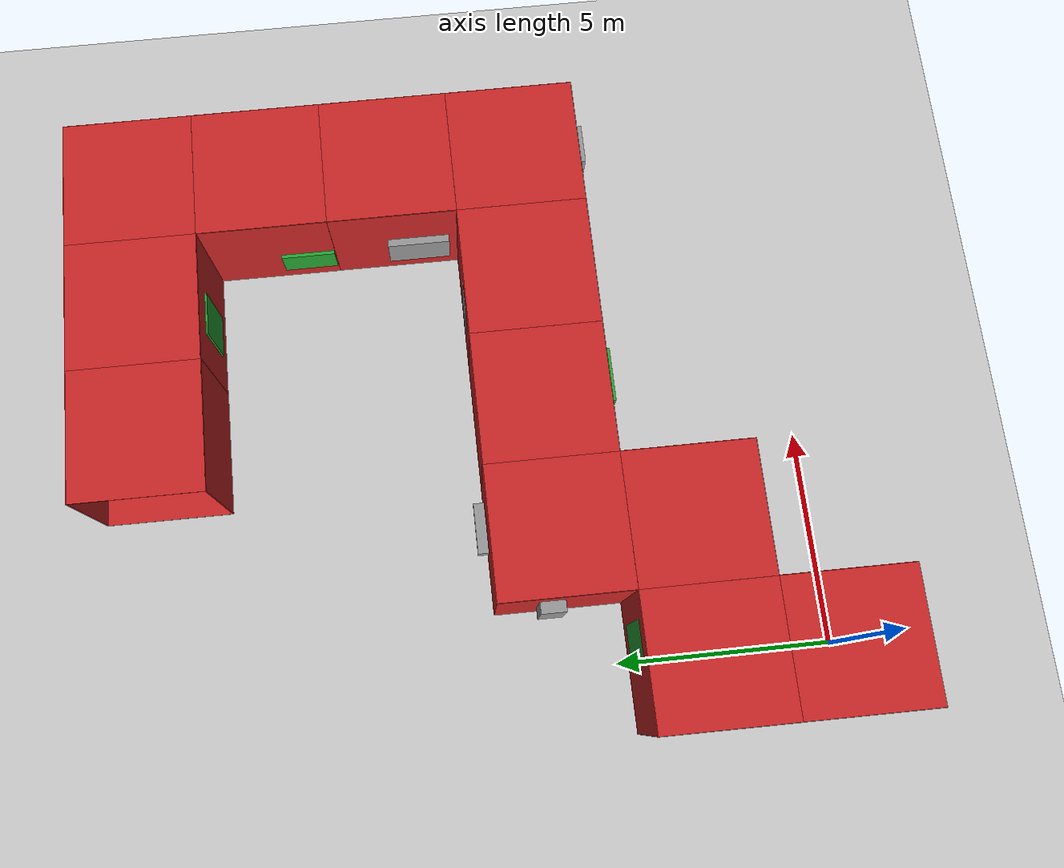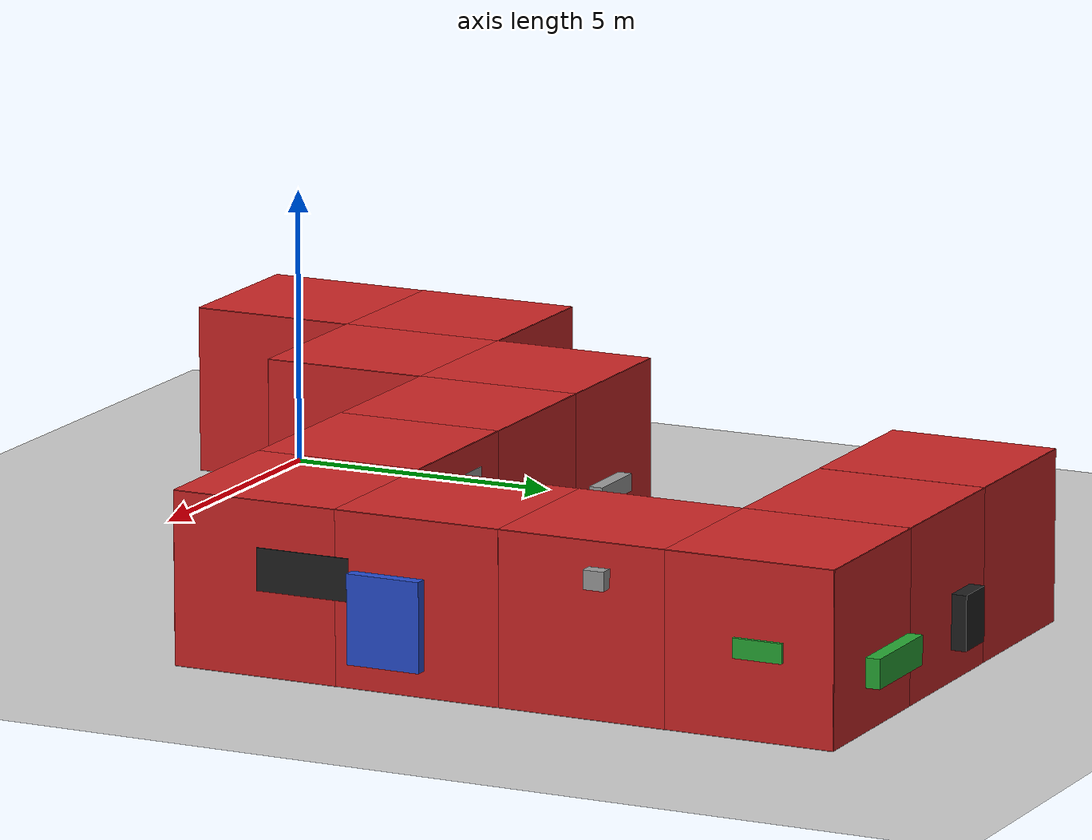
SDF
<sdf version="1.6">
 <world name="default">
  <model name="ground_plane">
   <static>1</static>
   <link name="link">
    <collision name="collision">
     <geometry><plane><normal>0 0 1</normal><size>100 100</size></plane></geometry>
     <surface><friction><ode><mu>100</mu><mu2>50</mu2></ode></friction></surface>
    </collision>
    <visual name="visual">
     <cast_shadows>0</cast_shadows>
     <geometry><plane><normal>0 0 1</normal><size>100 100</size></plane></geometry>
     <material>
      <script><uri>file://media/materials/scripts/gazebo.material</uri><name>Gazebo/Grey</name></script>
     </material>
    </visual>
   </link>
  </model>
  <model name="corridor_red">
   <model name="wall_right_0_0_0_0">
    <static>1</static>
    <pose>1.5 0 1.5 0 -0 1.57</pose>
    <link name="link">
     <collision name="collision"><geometry><box><size>3 0.02 3</size></box></geometry></collision>
     <visual name="visual">
      <material>
       <script><name>Gazebo/Red</name><uri>file://media/materials/scripts/gazebo.material</uri></script>
      </material>
      <geometry><box><size>3 0.02 3</size></box></geometry>
     </visual>
    </link>
   </model>
   <model name="wall_left_0_0_0_0">
    <static>1</static>
    <pose>-1.5 0 1.5 0 -0 1.57</pose>
    <link name="link">
     <collision name="collision"><geometry><box><size>3 0.02 3</size></box></geometry></collision>
     <visual name="visual">
      <material>
       <script><name>Gazebo/Red</name><uri>file://media/materials/scripts/gazebo.material</uri></script>
      </material>
      <geometry><box><size>3 0.02 3</size></box></geometry>
     </visual>
    </link>
   </model>
   <model name="wall_top_0_0_0_0">
    <static>1</static>
    <pose>0 0 3 1.57 -0 0</pose>
    <link name="link">
     <collision name="collision"><geometry><box><size>3 0.02 3</size></box></geometry></collision>
     <visual name="visual">
      <material>
       <script><name>Gazebo/Red</name><uri>file://media/materials/scripts/gazebo.material</uri></script>
      </material>
      <geometry><box><size>3 0.02 3</size></box></geometry>
     </visual>
    </link>
   </model>
   <model name="wall_bottom_0_0_0_0">
    <static>1</static>
    <pose>0 0 0 1.57 -0 0</pose>
    <link name="link">
     <collision name="collision"><geometry><box><size>3 0.02 3</size></box></geometry></collision>
     <visual name="visual">
      <material>
       <script><name>Gazebo/Red</name><uri>file://media/materials/scripts/gazebo.material</uri></script>
      </material>
      <geometry><box><size>3 0.02 3</size></box></geometry>
     </visual>
    </link>
   </model>
   <model name="wall_front_0_1_0_2">
    <static>1</static>
    <pose>0 4.5 1.5 0 -0 0</pose>
    <link name="link">
     <collision name="collision"><geometry><box><size>3 0.02 3</size></box></geometry></collision>
     <visual name="visual">
      <material>
       <script><name>Gazebo/Red</name><uri>file://media/materials/scripts/gazebo.material</uri></script>
      </material>
      <geometry><box><size>3 0.02 3</size></box></geometry>
     </visual>
    </link>
   </model>
   <model name="wall_left_0_1_0_2">
    <static>1</static>
    <pose>-1.5 3 1.5 0 -0 1.57</pose>
    <link name="link">
     <collision name="collision"><geometry><box><size>3 0.02 3</size></box></geometry></collision>
     <visual name="visual">
      <material>
       <script><name>Gazebo/Red</name><uri>file://media/materials/scripts/gazebo.material</uri></script>
      </material>
      <geometry><box><size>3 0.02 3</size></box></geometry>
     </visual>
    </link>
   </model>
   <model name="wall_top_0_1_0_2">
    <static>1</static>
    <pose>0 3 3 1.57 -0 0</pose>
    <link name="link">
     <collision name="collision"><geometry><box><size>3 0.02 3</size></box></geometry></collision>
     <visual name="visual">
      <material>
       <script><name>Gazebo/Red</name><uri>file://media/materials/scripts/gazebo.material</uri></script>
      </material>
      <geometry><box><size>3 0.02 3</size></box></geometry>
     </visual>
    </link>
   </model>
   <model name="wall_bottom_0_1_0_2">
    <static>1</static>
    <pose>0 3 0 1.57 -0 0</pose>
    <link name="link">
     <collision name="collision"><geometry><box><size>3 0.02 3</size></box></geometry></collision>
     <visual name="visual">
      <material>
       <script><name>Gazebo/Red</name><uri>file://media/materials/scripts/gazebo.material</uri></script>
      </material>
      <geometry><box><size>3 0.02 3</size></box></geometry>
     </visual>
    </link>
   </model>
   <model name="panel_0_1_0_2">
    <static>1</static>
    <pose>0.487638 4.5 1.52326 0 -0 1.57</pose>
    <link name="link">
     <collision name="collision"><geometry><box><size>0.058495 0.864081 1.93927</size></box></geometry></collision>
     <visual name="visual">
      <material>
       <script><name>Gazebo/Green</name><uri>file://media/materials/scripts/gazebo.material</uri></script>
      </material>
      <geometry><box><size>0.058495 0.864081 1.93927</size></box></geometry>
     </visual>
    </link>
   </model>
   <model name="panel_0_1_1_2">
    <static>1</static>
    <pose>-1.5 2.52412 1.63613 0 -0 0</pose>
    <link name="link">
     <collision name="collision">
      <geometry><box><size>0.045875 0.808978 0.846938</size></box></geometry>
     </collision>
     <visual name="visual">
      <material>
       <script><name>Gazebo/Black</name><uri>file://media/materials/scripts/gazebo.material</uri></script>
      </material>
      <geometry><box><size>0.045875 0.808978 0.846938</size></box></geometry>
     </visual>
    </link>
   </model>
   <model name="wall_front_1_1_0_3">
    <static>1</static>
    <pose>4.5 3 1.5 0 0 -1.57</pose>
    <link name="link">
     <collision name="collision"><geometry><box><size>3 0.02 3</size></box></geometry></collision>
     <visual name="visual">
      <material>
       <script><name>Gazebo/Red</name><uri>file://media/materials/scripts/gazebo.material</uri></script>
      </material>
      <geometry><box><size>3 0.02 3</size></box></geometry>
     </visual>
    </link>
   </model>
   <model name="wall_right_1_1_0_3">
    <static>1</static>
    <pose>3 1.5 1.5 0 -0 0</pose>
    <link name="link">
     <collision name="collision"><geometry><box><size>3 0.02 3</size></box></geometry></collision>
     <visual name="visual">
      <material>
       <script><name>Gazebo/Red</name><uri>file://media/materials/scripts/gazebo.material</uri></script>
      </material>
      <geometry><box><size>3 0.02 3</size></box></geometry>
     </visual>
    </link>
   </model>
   <model name="wall_top_1_1_0_3">
    <static>1</static>
    <pose>3 3 3 1.57 0 -1.57</pose>
    <link name="link">
     <collision name="collision"><geometry><box><size>3 0.02 3</size></box></geometry></collision>
     <visual name="visual">
      <material>
       <script><name>Gazebo/Red</name><uri>file://media/materials/scripts/gazebo.material</uri></script>
      </material>
      <geometry><box><size>3 0.02 3</size></box></geometry>
     </visual>
    </link>
   </model>
   <model name="wall_bottom_1_1_0_3">
    <static>1</static>
    <pose>3 3 0 1.57 0 -1.57</pose>
    <link name="link">
     <collision name="collision"><geometry><box><size>3 0.02 3</size></box></geometry></collision>
     <visual name="visual">
      <material>
       <script><name>Gazebo/Red</name><uri>file://media/materials/scripts/gazebo.material</uri></script>
      </material>
      <geometry><box><size>3 0.02 3</size></box></geometry>
     </visual>
    </link>
   </model>
   <model name="panel_1_1_0_3">
    <static>1</static>
    <pose>4.5 3.93743 1.50054 0 -0 0</pose>
    <link name="link">
     <collision name="collision"><geometry><box><size>0.007959 1.45146 1.98542</size></box></geometry></collision>
     <visual name="visual">
      <material>
       <script><name>Gazebo/White</name><uri>file://media/materials/scripts/gazebo.material</uri></script>
      </material>
      <geometry><box><size>0.007959 1.45146 1.98542</size></box></geometry>
     </visual>
    </link>
   </model>
   <model name="panel_1_1_1_3">
    <static>1</static>
    <pose>3.24702 1.5 1.29993 0 0 -1.57</pose>
    <link name="link">
     <collision name="collision">
      <geometry><box><size>0.208442 0.891773 0.952969</size></box></geometry>
     </collision>
     <visual name="visual">
      <material>
       <script><name>Gazebo/White</name><uri>file://media/materials/scripts/gazebo.material</uri></script>
      </material>
      <geometry><box><size>0.208442 0.891773 0.952969</size></box></geometry>
     </visual>
    </link>
   </model>
   <model name="wall_front_1_2_0_2">
    <static>1</static>
    <pose>3 7.5 1.5 0 -0 0</pose>
    <link name="link">
     <collision name="collision"><geometry><box><size>3 0.02 3</size></box></geometry></collision>
     <visual name="visual">
      <material>
       <script><name>Gazebo/Red</name><uri>file://media/materials/scripts/gazebo.material</uri></script>
      </material>
      <geometry><box><size>3 0.02 3</size></box></geometry>
     </visual>
    </link>
   </model>
   <model name="wall_left_1_2_0_2">
    <static>1</static>
    <pose>1.5 6 1.5 0 -0 1.57</pose>
    <link name="link">
     <collision name="collision"><geometry><box><size>3 0.02 3</size></box></geometry></collision>
     <visual name="visual">
      <material>
       <script><name>Gazebo/Red</name><uri>file://media/materials/scripts/gazebo.material</uri></script>
      </material>
      <geometry><box><size>3 0.02 3</size></box></geometry>
     </visual>
    </link>
   </model>
   <model name="wall_top_1_2_0_2">
    <static>1</static>
    <pose>3 6 3 1.57 -0 0</pose>
    <link name="link">
     <collision name="collision"><geometry><box><size>3 0.02 3</size></box></geometry></collision>
     <visual name="visual">
      <material>
       <script><name>Gazebo/Red</name><uri>file://media/materials/scripts/gazebo.material</uri></script>
      </material>
      <geometry><box><size>3 0.02 3</size></box></geometry>
     </visual>
    </link>
   </model>
   <model name="wall_bottom_1_2_0_2">
    <static>1</static>
    <pose>3 6 0 1.57 -0 0</pose>
    <link name="link">
     <collision name="collision"><geometry><box><size>3 0.02 3</size></box></geometry></collision>
     <visual name="visual">
      <material>
       <script><name>Gazebo/Red</name><uri>file://media/materials/scripts/gazebo.material</uri></script>
      </material>
      <geometry><box><size>3 0.02 3</size></box></geometry>
     </visual>
    </link>
   </model>
   <model name="panel_1_2_0_2">
    <static>1</static>
    <pose>3.38466 7.5 1.07951 0 -0 1.57</pose>
    <link name="link">
     <collision name="collision"><geometry><box><size>0.518997 1.1635 0.317813</size></box></geometry></collision>
     <visual name="visual">
      <material>
       <script><name>Gazebo/Grey</name><uri>file://media/materials/scripts/gazebo.material</uri></script>
      </material>
      <geometry><box><size>0.518997 1.1635 0.317813</size></box></geometry>
     </visual>
    </link>
   </model>
   <model name="panel_1_2_1_2">
    <static>1</static>
    <pose>1.5 6.27988 1.72428 0 -0 0</pose>
    <link name="link">
     <collision name="collision"><geometry><box><size>0.54761 0.568058 1.47225</size></box></geometry></collision>
     <visual name="visual">
      <material>
       <script><name>Gazebo/Grey</name><uri>file://media/materials/scripts/gazebo.material</uri></script>
      </material>
      <geometry><box><size>0.54761 0.568058 1.47225</size></box></geometry>
     </visual>
    </link>
   </model>
   <model name="wall_right_2_2_0_1">
    <static>1</static>
    <pose>6 4.5 1.5 0 -0 0</pose>
    <link name="link">
     <collision name="collision"><geometry><box><size>3 0.02 3</size></box></geometry></collision>
     <visual name="visual">
      <material>
       <script><name>Gazebo/Red</name><uri>file://media/materials/scripts/gazebo.material</uri></script>
      </material>
      <geometry><box><size>3 0.02 3</size></box></geometry>
     </visual>
    </link>
   </model>
   <model name="wall_left_2_2_0_1">
    <static>1</static>
    <pose>6 7.5 1.5 0 -0 0</pose>
    <link name="link">
     <collision name="collision"><geometry><box><size>3 0.02 3</size></box></geometry></collision>
     <visual name="visual">
      <material>
       <script><name>Gazebo/Red</name><uri>file://media/materials/scripts/gazebo.material</uri></script>
      </material>
      <geometry><box><size>3 0.02 3</size></box></geometry>
     </visual>
    </link>
   </model>
   <model name="wall_top_2_2_0_1">
    <static>1</static>
    <pose>6 6 3 1.57 0 -1.57</pose>
    <link name="link">
     <collision name="collision"><geometry><box><size>3 0.02 3</size></box></geometry></collision>
     <visual name="visual">
      <material>
       <script><name>Gazebo/Red</name><uri>file://media/materials/scripts/gazebo.material</uri></script>
      </material>
      <geometry><box><size>3 0.02 3</size></box></geometry>
     </visual>
    </link>
   </model>
   <model name="wall_bottom_2_2_0_1">
    <static>1</static>
    <pose>6 6 0 1.57 0 -1.57</pose>
    <link name="link">
     <collision name="collision"><geometry><box><size>3 0.02 3</size></box></geometry></collision>
     <visual name="visual">
      <material>
       <script><name>Gazebo/Red</name><uri>file://media/materials/scripts/gazebo.material</uri></script>
      </material>
      <geometry><box><size>3 0.02 3</size></box></geometry>
     </visual>
    </link>
   </model>
   <model name="panel_2_2_0_1">
    <static>1</static>
    <pose>6.38985 4.5 1.54685 0 0 -1.57</pose>
    <link name="link">
     <collision name="collision"><geometry><box><size>0.301136 1.24316 1.88123</size></box></geometry></collision>
     <visual name="visual">
      <material>
       <script><name>Gazebo/Green</name><uri>file://media/materials/scripts/gazebo.material</uri></script>
      </material>
      <geometry><box><size>0.301136 1.24316 1.88123</size></box></geometry>
     </visual>
    </link>
   </model>
   <model name="panel_2_2_1_1">
    <static>1</static>
    <pose>5.69595 7.5 1.54694 0 0 -1.57</pose>
    <link name="link">
     <collision name="collision"><geometry><box><size>0.003623 0.754308 1.92735</size></box></geometry></collision>
     <visual name="visual">
      <material>
       <script><name>Gazebo/Black</name><uri>file://media/materials/scripts/gazebo.material</uri></script>
      </material>
      <geometry><box><size>0.003623 0.754308 1.92735</size></box></geometry>
     </visual>
    </link>
   </model>
   <model name="wall_right_3_2_0_1">
    <static>1</static>
    <pose>9 4.5 1.5 0 -0 0</pose>
    <link name="link">
     <collision name="collision"><geometry><box><size>3 0.02 3</size></box></geometry></collision>
     <visual name="visual">
      <material>
       <script><name>Gazebo/Red</name><uri>file://media/materials/scripts/gazebo.material</uri></script>
      </material>
      <geometry><box><size>3 0.02 3</size></box></geometry>
     </visual>
    </link>
   </model>
   <model name="wall_left_3_2_0_1">
    <static>1</static>
    <pose>9 7.5 1.5 0 -0 0</pose>
    <link name="link">
     <collision name="collision"><geometry><box><size>3 0.02 3</size></box></geometry></collision>
     <visual name="visual">
      <material>
       <script><name>Gazebo/Red</name><uri>file://media/materials/scripts/gazebo.material</uri></script>
      </material>
      <geometry><box><size>3 0.02 3</size></box></geometry>
     </visual>
    </link>
   </model>
   <model name="wall_top_3_2_0_1">
    <static>1</static>
    <pose>9 6 3 1.57 0 -1.57</pose>
    <link name="link">
     <collision name="collision"><geometry><box><size>3 0.02 3</size></box></geometry></collision>
     <visual name="visual">
      <material>
       <script><name>Gazebo/Red</name><uri>file://media/materials/scripts/gazebo.material</uri></script>
      </material>
      <geometry><box><size>3 0.02 3</size></box></geometry>
     </visual>
    </link>
   </model>
   <model name="wall_bottom_3_2_0_1">
    <static>1</static>
    <pose>9 6 0 1.57 0 -1.57</pose>
    <link name="link">
     <collision name="collision"><geometry><box><size>3 0.02 3</size></box></geometry></collision>
     <visual name="visual">
      <material>
       <script><name>Gazebo/Red</name><uri>file://media/materials/scripts/gazebo.material</uri></script>
      </material>
      <geometry><box><size>3 0.02 3</size></box></geometry>
     </visual>
    </link>
   </model>
   <model name="panel_3_2_0_1">
    <static>1</static>
    <pose>9.03117 4.5 1.3522 0 0 -1.57</pose>
    <link name="link">
     <collision name="collision">
      <geometry><box><size>0.035317 0.295151 0.625916</size></box></geometry>
     </collision>
     <visual name="visual">
      <material>
       <script><name>Gazebo/Black</name><uri>file://media/materials/scripts/gazebo.material</uri></script>
      </material>
      <geometry><box><size>0.035317 0.295151 0.625916</size></box></geometry>
     </visual>
    </link>
   </model>
   <model name="panel_3_2_1_1">
    <static>1</static>
    <pose>8.59102 7.5 1.63821 0 0 -1.57</pose>
    <link name="link">
     <collision name="collision"><geometry><box><size>0.032025 0.85761 1.79264</size></box></geometry></collision>
     <visual name="visual">
      <material>
       <script><name>Gazebo/Grey</name><uri>file://media/materials/scripts/gazebo.material</uri></script>
      </material>
      <geometry><box><size>0.032025 0.85761 1.79264</size></box></geometry>
     </visual>
    </link>
   </model>
   <model name="wall_front_4_2_0_3">
    <static>1</static>
    <pose>13.5 6 1.5 0 0 -1.57</pose>
    <link name="link">
     <collision name="collision"><geometry><box><size>3 0.02 3</size></box></geometry></collision>
     <visual name="visual">
      <material>
       <script><name>Gazebo/Red</name><uri>file://media/materials/scripts/gazebo.material</uri></script>
      </material>
      <geometry><box><size>3 0.02 3</size></box></geometry>
     </visual>
    </link>
   </model>
   <model name="wall_right_4_2_0_3">
    <static>1</static>
    <pose>12 4.5 1.5 0 -0 0</pose>
    <link name="link">
     <collision name="collision"><geometry><box><size>3 0.02 3</size></box></geometry></collision>
     <visual name="visual">
      <material>
       <script><name>Gazebo/Red</name><uri>file://media/materials/scripts/gazebo.material</uri></script>
      </material>
      <geometry><box><size>3 0.02 3</size></box></geometry>
     </visual>
    </link>
   </model>
   <model name="wall_top_4_2_0_3">
    <static>1</static>
    <pose>12 6 3 1.57 0 -1.57</pose>
    <link name="link">
     <collision name="collision"><geometry><box><size>3 0.02 3</size></box></geometry></collision>
     <visual name="visual">
      <material>
       <script><name>Gazebo/Red</name><uri>file://media/materials/scripts/gazebo.material</uri></script>
      </material>
      <geometry><box><size>3 0.02 3</size></box></geometry>
     </visual>
    </link>
   </model>
   <model name="wall_bottom_4_2_0_3">
    <static>1</static>
    <pose>12 6 0 1.57 0 -1.57</pose>
    <link name="link">
     <collision name="collision"><geometry><box><size>3 0.02 3</size></box></geometry></collision>
     <visual name="visual">
      <material>
       <script><name>Gazebo/Red</name><uri>file://media/materials/scripts/gazebo.material</uri></script>
      </material>
      <geometry><box><size>3 0.02 3</size></box></geometry>
     </visual>
    </link>
   </model>
   <model name="panel_4_2_0_3">
    <static>1</static>
    <pose>12.0527 4.5 2.28153 0 0 -1.57</pose>
    <link name="link">
     <collision name="collision"><geometry><box><size>0.31983 0.91885 0.76039</size></box></geometry></collision>
     <visual name="visual">
      <material>
       <script><name>Gazebo/Grey</name><uri>file://media/materials/scripts/gazebo.material</uri></script>
      </material>
      <geometry><box><size>0.31983 0.91885 0.76039</size></box></geometry>
     </visual>
    </link>
   </model>
   <model name="panel_4_2_1_3">
    <static>1</static>
    <pose>13.5 6.9027 1.83159 0 -0 0</pose>
    <link name="link">
     <collision name="collision"><geometry><box><size>0.044124 1.70247 0.736742</size></box></geometry></collision>
     <visual name="visual">
      <material>
       <script><name>Gazebo/Black</name><uri>file://media/materials/scripts/gazebo.material</uri></script>
      </material>
      <geometry><box><size>0.044124 1.70247 0.736742</size></box></geometry>
     </visual>
    </link>
   </model>
   <model name="wall_right_4_3_0_1">
    <static>1</static>
    <pose>13.5 9 1.5 0 -0 1.57</pose>
    <link name="link">
     <collision name="collision"><geometry><box><size>3 0.02 3</size></box></geometry></collision>
     <visual name="visual">
      <material>
       <script><name>Gazebo/Red</name><uri>file://media/materials/scripts/gazebo.material</uri></script>
      </material>
      <geometry><box><size>3 0.02 3</size></box></geometry>
     </visual>
    </link>
   </model>
   <model name="wall_left_4_3_0_1">
    <static>1</static>
    <pose>10.5 9 1.5 0 -0 1.57</pose>
    <link name="link">
     <collision name="collision"><geometry><box><size>3 0.02 3</size></box></geometry></collision>
     <visual name="visual">
      <material>
       <script><name>Gazebo/Red</name><uri>file://media/materials/scripts/gazebo.material</uri></script>
      </material>
      <geometry><box><size>3 0.02 3</size></box></geometry>
     </visual>
    </link>
   </model>
   <model name="wall_top_4_3_0_1">
    <static>1</static>
    <pose>12 9 3 1.57 -0 0</pose>
    <link name="link">
     <collision name="collision"><geometry><box><size>3 0.02 3</size></box></geometry></collision>
     <visual name="visual">
      <material>
       <script><name>Gazebo/Red</name><uri>file://media/materials/scripts/gazebo.material</uri></script>
      </material>
      <geometry><box><size>3 0.02 3</size></box></geometry>
     </visual>
    </link>
   </model>
   <model name="wall_bottom_4_3_0_1">
    <static>1</static>
    <pose>12 9 0 1.57 -0 0</pose>
    <link name="link">
     <collision name="collision"><geometry><box><size>3 0.02 3</size></box></geometry></collision>
     <visual name="visual">
      <material>
       <script><name>Gazebo/Red</name><uri>file://media/materials/scripts/gazebo.material</uri></script>
      </material>
      <geometry><box><size>3 0.02 3</size></box></geometry>
     </visual>
    </link>
   </model>
   <model name="panel_4_3_0_1">
    <static>1</static>
    <pose>13.5 8.48738 1.23135 0 -0 0</pose>
    <link name="link">
     <collision name="collision"><geometry><box><size>0.452088 1.32208 1.54683</size></box></geometry></collision>
     <visual name="visual">
      <material>
       <script><name>Gazebo/Blue</name><uri>file://media/materials/scripts/gazebo.material</uri></script>
      </material>
      <geometry><box><size>0.452088 1.32208 1.54683</size></box></geometry>
     </visual>
    </link>
   </model>
   <model name="panel_4_3_1_1">
    <static>1</static>
    <pose>10.5 8.44795 1.20364 0 -0 0</pose>
    <link name="link">
     <collision name="collision"><geometry><box><size>0.378508 1.47639 0.925448</size></box></geometry></collision>
     <visual name="visual">
      <material>
       <script><name>Gazebo/Grey</name><uri>file://media/materials/scripts/gazebo.material</uri></script>
      </material>
      <geometry><box><size>0.378508 1.47639 0.925448</size></box></geometry>
     </visual>
    </link>
   </model>
   <model name="wall_right_4_4_0_1">
    <static>1</static>
    <pose>13.5 12 1.5 0 -0 1.57</pose>
    <link name="link">
     <collision name="collision"><geometry><box><size>3 0.02 3</size></box></geometry></collision>
     <visual name="visual">
      <material>
       <script><name>Gazebo/Red</name><uri>file://media/materials/scripts/gazebo.material</uri></script>
      </material>
      <geometry><box><size>3 0.02 3</size></box></geometry>
     </visual>
    </link>
   </model>
   <model name="wall_left_4_4_0_1">
    <static>1</static>
    <pose>10.5 12 1.5 0 -0 1.57</pose>
    <link name="link">
     <collision name="collision"><geometry><box><size>3 0.02 3</size></box></geometry></collision>
     <visual name="visual">
      <material>
       <script><name>Gazebo/Red</name><uri>file://media/materials/scripts/gazebo.material</uri></script>
      </material>
      <geometry><box><size>3 0.02 3</size></box></geometry>
     </visual>
    </link>
   </model>
   <model name="wall_top_4_4_0_1">
    <static>1</static>
    <pose>12 12 3 1.57 -0 0</pose>
    <link name="link">
     <collision name="collision"><geometry><box><size>3 0.02 3</size></box></geometry></collision>
     <visual name="visual">
      <material>
       <script><name>Gazebo/Red</name><uri>file://media/materials/scripts/gazebo.material</uri></script>
      </material>
      <geometry><box><size>3 0.02 3</size></box></geometry>
     </visual>
    </link>
   </model>
   <model name="wall_bottom_4_4_0_1">
    <static>1</static>
    <pose>12 12 0 1.57 -0 0</pose>
    <link name="link">
     <collision name="collision"><geometry><box><size>3 0.02 3</size></box></geometry></collision>
     <visual name="visual">
      <material>
       <script><name>Gazebo/Red</name><uri>file://media/materials/scripts/gazebo.material</uri></script>
      </material>
      <geometry><box><size>3 0.02 3</size></box></geometry>
     </visual>
    </link>
   </model>
   <model name="panel_4_4_0_1">
    <static>1</static>
    <pose>13.5 12.3336 2.40579 0 -0 0</pose>
    <link name="link">
     <collision name="collision">
      <geometry><box><size>0.491219 0.372776 0.328603</size></box></geometry>
     </collision>
     <visual name="visual">
      <material>
       <script><name>Gazebo/Grey</name><uri>file://media/materials/scripts/gazebo.material</uri></script>
      </material>
      <geometry><box><size>0.491219 0.372776 0.328603</size></box></geometry>
     </visual>
    </link>
   </model>
   <model name="panel_4_4_1_1">
    <static>1</static>
    <pose>10.5 11.1531 0.941465 0 -0 0</pose>
    <link name="link">
     <collision name="collision"><geometry><box><size>0.193777 1.28866 0.769732</size></box></geometry></collision>
     <visual name="visual">
      <material>
       <script><name>Gazebo/Green</name><uri>file://media/materials/scripts/gazebo.material</uri></script>
      </material>
      <geometry><box><size>0.193777 1.28866 0.769732</size></box></geometry>
     </visual>
    </link>
   </model>
   <model name="wall_front_4_5_0_3">
    <static>1</static>
    <pose>12 16.5 1.5 0 -0 0</pose>
    <link name="link">
     <collision name="collision"><geometry><box><size>3 0.02 3</size></box></geometry></collision>
     <visual name="visual">
      <material>
       <script><name>Gazebo/Red</name><uri>file://media/materials/scripts/gazebo.material</uri></script>
      </material>
      <geometry><box><size>3 0.02 3</size></box></geometry>
     </visual>
    </link>
   </model>
   <model name="wall_right_4_5_0_3">
    <static>1</static>
    <pose>13.5 15 1.5 0 -0 1.57</pose>
    <link name="link">
     <collision name="collision"><geometry><box><size>3 0.02 3</size></box></geometry></collision>
     <visual name="visual">
      <material>
       <script><name>Gazebo/Red</name><uri>file://media/materials/scripts/gazebo.material</uri></script>
      </material>
      <geometry><box><size>3 0.02 3</size></box></geometry>
     </visual>
    </link>
   </model>
   <model name="wall_top_4_5_0_3">
    <static>1</static>
    <pose>12 15 3 1.57 -0 0</pose>
    <link name="link">
     <collision name="collision"><geometry><box><size>3 0.02 3</size></box></geometry></collision>
     <visual name="visual">
      <material>
       <script><name>Gazebo/Red</name><uri>file://media/materials/scripts/gazebo.material</uri></script>
      </material>
      <geometry><box><size>3 0.02 3</size></box></geometry>
     </visual>
    </link>
   </model>
   <model name="wall_bottom_4_5_0_3">
    <static>1</static>
    <pose>12 15 0 1.57 -0 0</pose>
    <link name="link">
     <collision name="collision"><geometry><box><size>3 0.02 3</size></box></geometry></collision>
     <visual name="visual">
      <material>
       <script><name>Gazebo/Red</name><uri>file://media/materials/scripts/gazebo.material</uri></script>
      </material>
      <geometry><box><size>3 0.02 3</size></box></geometry>
     </visual>
    </link>
   </model>
   <model name="panel_4_5_0_3">
    <static>1</static>
    <pose>13.5 15.177 1.52472 0 -0 0</pose>
    <link name="link">
     <collision name="collision">
      <geometry><box><size>0.142618 0.870041 0.341173</size></box></geometry>
     </collision>
     <visual name="visual">
      <material>
       <script><name>Gazebo/Green</name><uri>file://media/materials/scripts/gazebo.material</uri></script>
      </material>
      <geometry><box><size>0.142618 0.870041 0.341173</size></box></geometry>
     </visual>
    </link>
   </model>
   <model name="panel_4_5_1_3">
    <static>1</static>
    <pose>11.4205 16.5 1.0039 0 -0 1.57</pose>
    <link name="link">
     <collision name="collision"><geometry><box><size>0.529992 1.69585 0.508778</size></box></geometry></collision>
     <visual name="visual">
      <material>
       <script><name>Gazebo/Green</name><uri>file://media/materials/scripts/gazebo.material</uri></script>
      </material>
      <geometry><box><size>0.529992 1.69585 0.508778</size></box></geometry>
     </visual>
    </link>
   </model>
   <model name="wall_right_3_5_0_1">
    <static>1</static>
    <pose>9 16.5 1.5 0 -0 3.14</pose>
    <link name="link">
     <collision name="collision"><geometry><box><size>3 0.02 3</size></box></geometry></collision>
     <visual name="visual">
      <material>
       <script><name>Gazebo/Red</name><uri>file://media/materials/scripts/gazebo.material</uri></script>
      </material>
      <geometry><box><size>3 0.02 3</size></box></geometry>
     </visual>
    </link>
   </model>
   <model name="wall_left_3_5_0_1">
    <static>1</static>
    <pose>9 13.5 1.5 0 -0 3.14</pose>
    <link name="link">
     <collision name="collision"><geometry><box><size>3 0.02 3</size></box></geometry></collision>
     <visual name="visual">
      <material>
       <script><name>Gazebo/Red</name><uri>file://media/materials/scripts/gazebo.material</uri></script>
      </material>
      <geometry><box><size>3 0.02 3</size></box></geometry>
     </visual>
    </link>
   </model>
   <model name="wall_top_3_5_0_1">
    <static>1</static>
    <pose>9 15 3 1.57 -0 1.57</pose>
    <link name="link">
     <collision name="collision"><geometry><box><size>3 0.02 3</size></box></geometry></collision>
     <visual name="visual">
      <material>
       <script><name>Gazebo/Red</name><uri>file://media/materials/scripts/gazebo.material</uri></script>
      </material>
      <geometry><box><size>3 0.02 3</size></box></geometry>
     </visual>
    </link>
   </model>
   <model name="wall_bottom_3_5_0_1">
    <static>1</static>
    <pose>9 15 0 1.57 -0 1.57</pose>
    <link name="link">
     <collision name="collision"><geometry><box><size>3 0.02 3</size></box></geometry></collision>
     <visual name="visual">
      <material>
       <script><name>Gazebo/Red</name><uri>file://media/materials/scripts/gazebo.material</uri></script>
      </material>
      <geometry><box><size>3 0.02 3</size></box></geometry>
     </visual>
    </link>
   </model>
   <model name="panel_3_5_0_1">
    <static>1</static>
    <pose>8.45714 16.5 1.02262 0 -0 1.57</pose>
    <link name="link">
     <collision name="collision">
      <geometry><box><size>0.557092 0.742877 0.954808</size></box></geometry>
     </collision>
     <visual name="visual">
      <material>
       <script><name>Gazebo/Black</name><uri>file://media/materials/scripts/gazebo.material</uri></script>
      </material>
      <geometry><box><size>0.557092 0.742877 0.954808</size></box></geometry>
     </visual>
    </link>
   </model>
   <model name="panel_3_5_1_1">
    <static>1</static>
    <pose>8.80504 13.5 1.43494 0 -0 1.57</pose>
    <link name="link">
     <collision name="collision"><geometry><box><size>0.105957 0.99063 1.76904</size></box></geometry></collision>
     <visual name="visual">
      <material>
       <script><name>Gazebo/Green</name><uri>file://media/materials/scripts/gazebo.material</uri></script>
      </material>
      <geometry><box><size>0.105957 0.99063 1.76904</size></box></geometry>
     </visual>
    </link>
   </model>
   <model name="wall_right_2_5_0_4">
    <static>1</static>
    <pose>6 16.5 1.5 0 -0 3.14</pose>
    <link name="link">
     <collision name="collision"><geometry><box><size>3 0.02 3</size></box></geometry></collision>
     <visual name="visual">
      <material>
       <script><name>Gazebo/Red</name><uri>file://media/materials/scripts/gazebo.material</uri></script>
      </material>
      <geometry><box><size>3 0.02 3</size></box></geometry>
     </visual>
    </link>
   </model>
   <model name="wall_left_2_5_0_4">
    <static>1</static>
    <pose>6 13.5 1.5 0 -0 3.14</pose>
    <link name="link">
     <collision name="collision"><geometry><box><size>3 0.02 3</size></box></geometry></collision>
     <visual name="visual">
      <material>
       <script><name>Gazebo/Red</name><uri>file://media/materials/scripts/gazebo.material</uri></script>
      </material>
      <geometry><box><size>3 0.02 3</size></box></geometry>
     </visual>
    </link>
   </model>
   <model name="wall_top_2_5_0_4">
    <static>1</static>
    <pose>6 15 3 1.57 -0 1.57</pose>
    <link name="link">
     <collision name="collision"><geometry><box><size>3 0.02 3</size></box></geometry></collision>
     <visual name="visual">
      <material>
       <script><name>Gazebo/Red</name><uri>file://media/materials/scripts/gazebo.material</uri></script>
      </material>
      <geometry><box><size>3 0.02 3</size></box></geometry>
     </visual>
    </link>
   </model>
   <model name="wall_bottom_2_5_0_4">
    <static>1</static>
    <pose>6 15 0 1.57 -0 1.57</pose>
    <link name="link">
     <collision name="collision"><geometry><box><size>3 0.02 3</size></box></geometry></collision>
     <visual name="visual">
      <material>
       <script><name>Gazebo/Red</name><uri>file://media/materials/scripts/gazebo.material</uri></script>
      </material>
      <geometry><box><size>3 0.02 3</size></box></geometry>
     </visual>
    </link>
   </model>
   <pose>-0.0912 0.213608 0 0 -0 0</pose>
  </model>
 </world>
</sdf>
